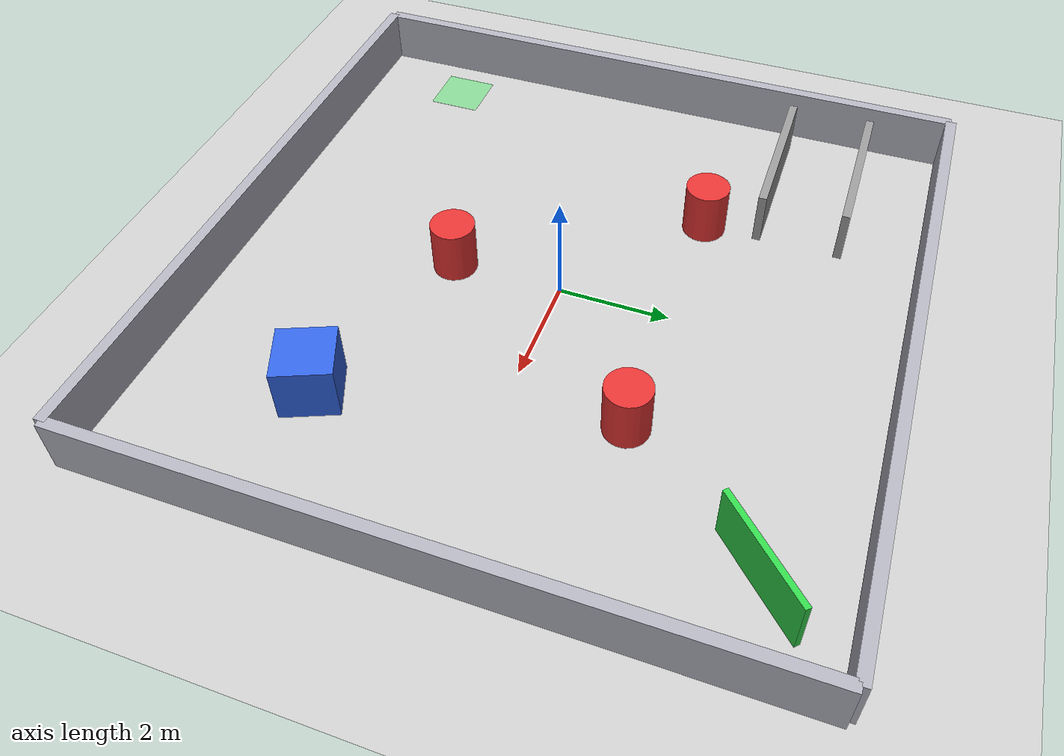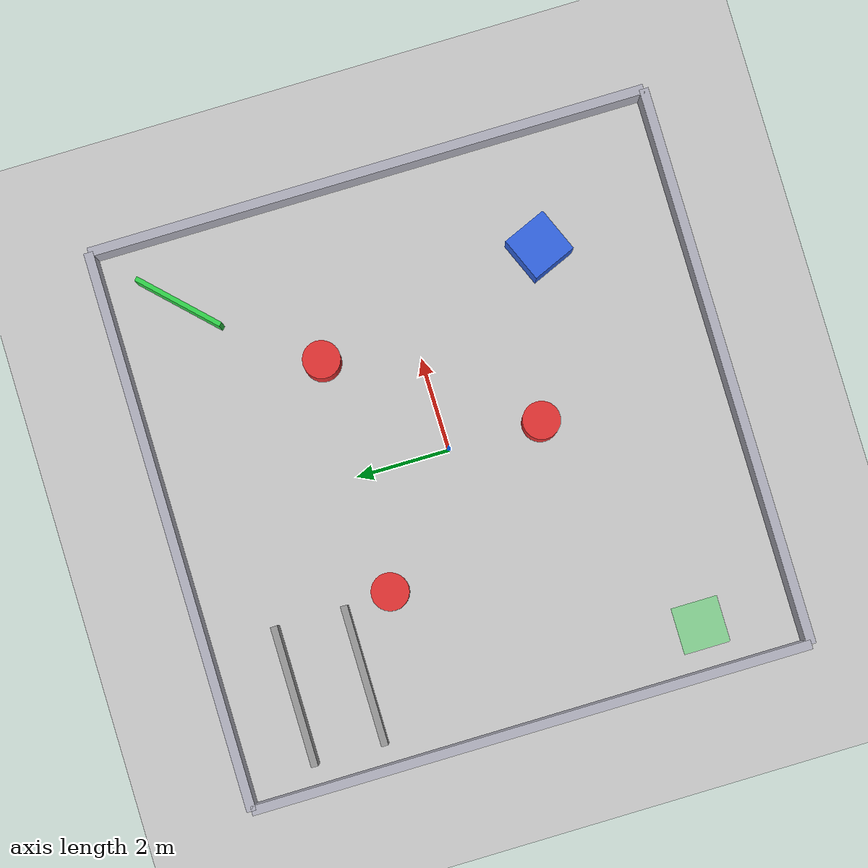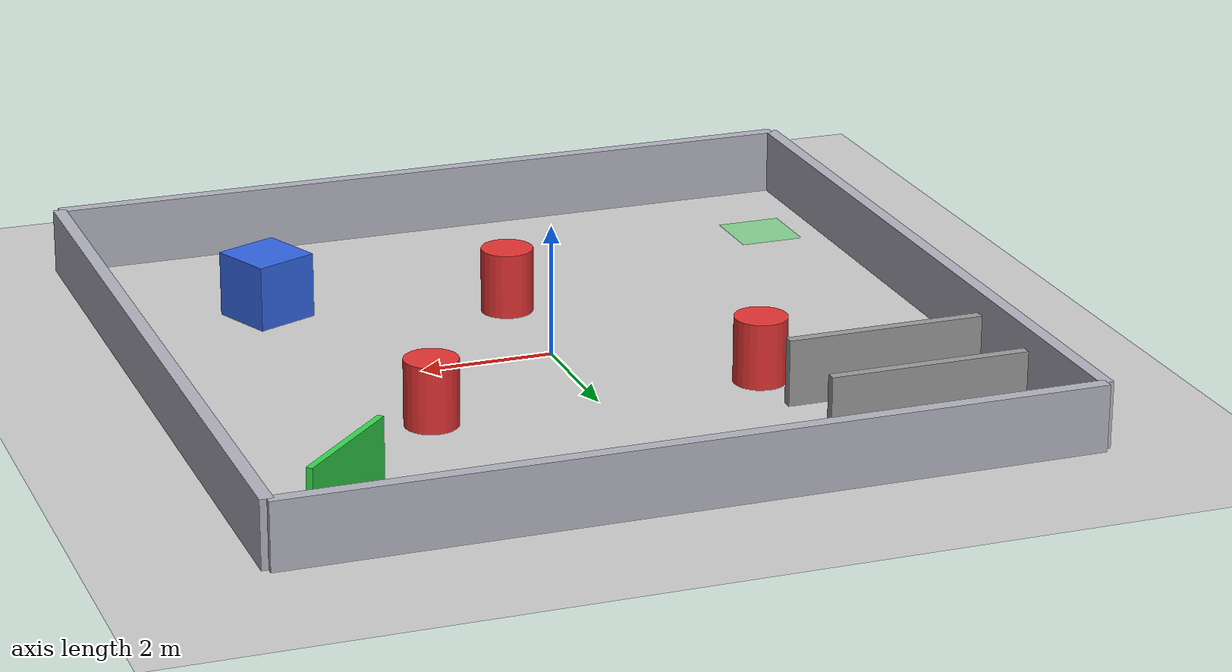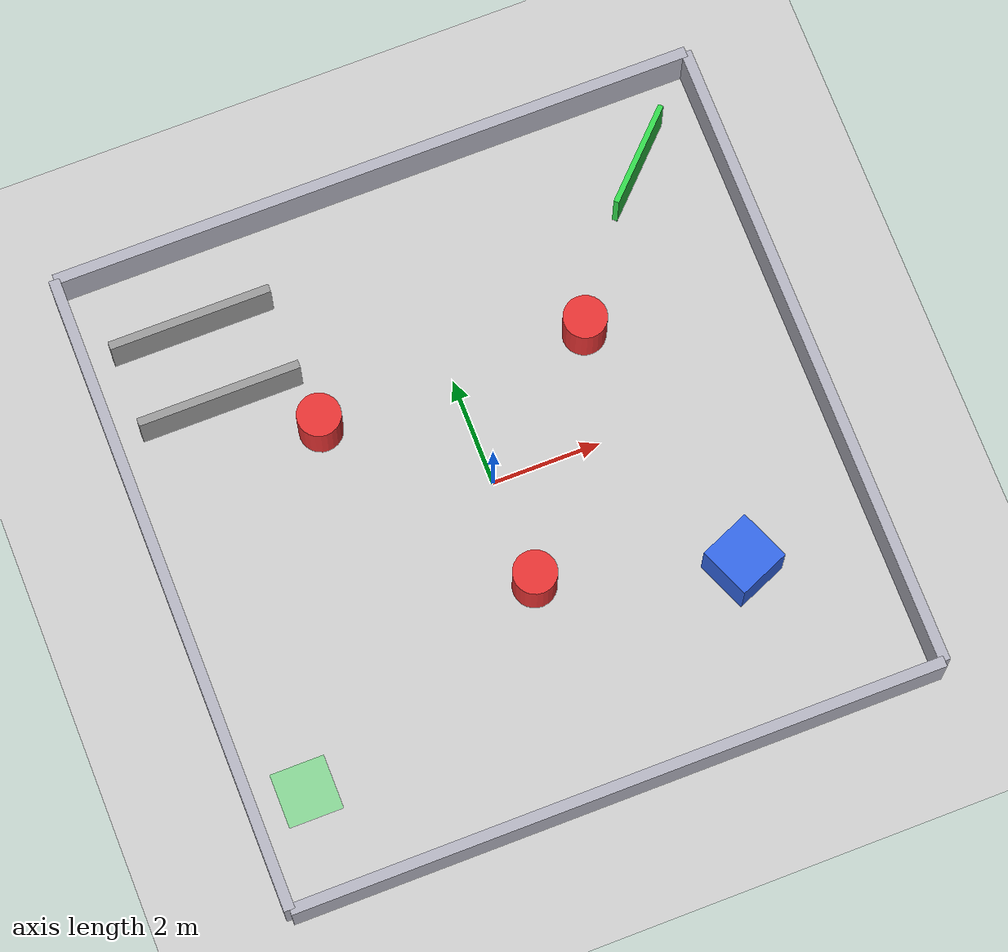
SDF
<?xml version="1.0" ?>
<sdf version="1.6">
  <world name="default">

    <!-- ==================== 物理引擎 ==================== -->
    <physics name="default_physics" default="true" type="ode">
      <max_step_size>0.001</max_step_size>
      <real_time_factor>1.0</real_time_factor>
      <real_time_update_rate>1000</real_time_update_rate>
    </physics>

    <!-- ==================== 光照 ==================== -->
    <light name="sun" type="directional">
      <cast_shadows>true</cast_shadows>
      <pose>0 0 10 0 0 0</pose>
      <diffuse>0.9 0.9 0.9 1</diffuse>
      <specular>0.2 0.2 0.2 1</specular>
      <attenuation>
        <range>1000</range>
        <constant>0.9</constant>
        <linear>0.01</linear>
        <quadratic>0.001</quadratic>
      </attenuation>
      <direction>-0.5 0.1 -0.9</direction>
    </light>

    <!-- ==================== 地面 ==================== -->
    <include>
      <uri>model://ground_plane</uri>
    </include>

    <!-- ==================== 场地围墙 (12m x 12m) ==================== -->
    <!-- 北墙 -->
    <model name="wall_north">
      <static>true</static>
      <pose>0 6 0.5 0 0 0</pose>
      <link name="link">
        <collision name="collision">
          <geometry><box><size>12 0.2 1.0</size></box></geometry>
        </collision>
        <visual name="visual">
          <geometry><box><size>12 0.2 1.0</size></box></geometry>
          <material>
            <ambient>0.6 0.6 0.65 1</ambient>
            <diffuse>0.7 0.7 0.75 1</diffuse>
          </material>
        </visual>
      </link>
    </model>

    <!-- 南墙 -->
    <model name="wall_south">
      <static>true</static>
      <pose>0 -6 0.5 0 0 0</pose>
      <link name="link">
        <collision name="collision">
          <geometry><box><size>12 0.2 1.0</size></box></geometry>
        </collision>
        <visual name="visual">
          <geometry><box><size>12 0.2 1.0</size></box></geometry>
          <material>
            <ambient>0.6 0.6 0.65 1</ambient>
            <diffuse>0.7 0.7 0.75 1</diffuse>
          </material>
        </visual>
      </link>
    </model>

    <!-- 东墙 -->
    <model name="wall_east">
      <static>true</static>
      <pose>6 0 0.5 0 0 0</pose>
      <link name="link">
        <collision name="collision">
          <geometry><box><size>0.2 12 1.0</size></box></geometry>
        </collision>
        <visual name="visual">
          <geometry><box><size>0.2 12 1.0</size></box></geometry>
          <material>
            <ambient>0.6 0.6 0.65 1</ambient>
            <diffuse>0.7 0.7 0.75 1</diffuse>
          </material>
        </visual>
      </link>
    </model>

    <!-- 西墙 -->
    <model name="wall_west">
      <static>true</static>
      <pose>-6 0 0.5 0 0 0</pose>
      <link name="link">
        <collision name="collision">
          <geometry><box><size>0.2 12 1.0</size></box></geometry>
        </collision>
        <visual name="visual">
          <geometry><box><size>0.2 12 1.0</size></box></geometry>
          <material>
            <ambient>0.6 0.6 0.65 1</ambient>
            <diffuse>0.7 0.7 0.75 1</diffuse>
          </material>
        </visual>
      </link>
    </model>

    <!-- ==================== 障碍物：圆柱阵列 ==================== -->
    <!-- 障碍物参数：半径 0.4m，高 1.0m，红色。用于激光雷达避障测试 -->

    <model name="obstacle_1">
      <static>true</static>
      <pose>2.5 2.0 0.5 0 0 0</pose>
      <link name="link">
        <collision name="collision">
          <geometry><cylinder><radius>0.4</radius><length>1.0</length></cylinder></geometry>
        </collision>
        <visual name="visual">
          <geometry><cylinder><radius>0.4</radius><length>1.0</length></cylinder></geometry>
          <material>
            <ambient>0.8 0.1 0.1 1</ambient>
            <diffuse>0.9 0.2 0.2 1</diffuse>
          </material>
        </visual>
      </link>
    </model>

    <model name="obstacle_2">
      <static>true</static>
      <pose>-2.5 2.0 0.5 0 0 0</pose>
      <link name="link">
        <collision name="collision">
          <geometry><cylinder><radius>0.4</radius><length>1.0</length></cylinder></geometry>
        </collision>
        <visual name="visual">
          <geometry><cylinder><radius>0.4</radius><length>1.0</length></cylinder></geometry>
          <material>
            <ambient>0.8 0.1 0.1 1</ambient>
            <diffuse>0.9 0.2 0.2 1</diffuse>
          </material>
        </visual>
      </link>
    </model>

    <model name="obstacle_3">
      <static>true</static>
      <pose>0 -2.0 0.5 0 0 0</pose>
      <link name="link">
        <collision name="collision">
          <geometry><cylinder><radius>0.4</radius><length>1.0</length></cylinder></geometry>
        </collision>
        <visual name="visual">
          <geometry><cylinder><radius>0.4</radius><length>1.0</length></cylinder></geometry>
          <material>
            <ambient>0.8 0.1 0.1 1</ambient>
            <diffuse>0.9 0.2 0.2 1</diffuse>
          </material>
        </visual>
      </link>
    </model>

    <!-- 方形障碍物，测试不同轮廓下的雷达回波 -->
    <model name="obstacle_box_1">
      <static>true</static>
      <pose>3.5 -3.0 0.5 0 0 0.4</pose>
      <link name="link">
        <collision name="collision">
          <geometry><box><size>1.0 1.0 1.0</size></box></geometry>
        </collision>
        <visual name="visual">
          <geometry><box><size>1.0 1.0 1.0</size></box></geometry>
          <material>
            <ambient>0.1 0.3 0.8 1</ambient>
            <diffuse>0.2 0.4 0.9 1</diffuse>
          </material>
        </visual>
      </link>
    </model>

    <!-- ==================== 走廊：测试沿墙行驶 ==================== -->
    <model name="corridor_wall_a">
      <static>true</static>
      <pose>-4.0 3.0 0.5 0 0 0</pose>
      <link name="link">
        <collision name="collision">
          <geometry><box><size>3.0 0.15 1.0</size></box></geometry>
        </collision>
        <visual name="visual">
          <geometry><box><size>3.0 0.15 1.0</size></box></geometry>
          <material>
            <ambient>0.5 0.5 0.5 1</ambient>
            <diffuse>0.6 0.6 0.6 1</diffuse>
          </material>
        </visual>
      </link>
    </model>

    <model name="corridor_wall_b">
      <static>true</static>
      <pose>-4.0 4.5 0.5 0 0 0</pose>
      <link name="link">
        <collision name="collision">
          <geometry><box><size>3.0 0.15 1.0</size></box></geometry>
        </collision>
        <visual name="visual">
          <geometry><box><size>3.0 0.15 1.0</size></box></geometry>
          <material>
            <ambient>0.5 0.5 0.5 1</ambient>
            <diffuse>0.6 0.6 0.6 1</diffuse>
          </material>
        </visual>
      </link>
    </model>

    <!-- ==================== 标定板：深度相机感知用 ==================== -->
    <!-- 绿色标定墙，深度相机通过它验证测距是否正确。
         位置说明：置于场地东北角，远离常用出生点 (-5, -4) 与 (-3.5, -3.5)，
         避免车辆生成时被卡入其中。 -->
    <model name="calibration_board">
      <static>true</static>
      <pose>4.5 4.5 0.5 0 0 0.785</pose>
      <link name="link">
        <collision name="collision">
          <geometry><box><size>2.0 0.1 1.0</size></box></geometry>
        </collision>
        <visual name="visual">
          <geometry><box><size>2.0 0.1 1.0</size></box></geometry>
          <material>
            <ambient>0.1 0.7 0.2 1</ambient>
            <diffuse>0.2 0.85 0.3 1</diffuse>
          </material>
        </visual>
      </link>
    </model>

    <!-- ==================== 出生区参考标记 ====================
         绿色半透明地面标记，指示推荐的车辆初始位置 (-5, -4)，
         该区域四周 2m 内无障碍物，便于开展直线行驶与转向测试。 -->
    <model name="spawn_marker">
      <static>true</static>
      <pose>-5.0 -4.0 0.01 0 0 0</pose>
      <link name="link">
        <visual name="visual">
          <geometry><box><size>1.0 1.0 0.01</size></box></geometry>
          <material>
            <ambient>0.2 0.8 0.3 0.5</ambient>
            <diffuse>0.3 0.9 0.4 0.5</diffuse>
          </material>
        </visual>
      </link>
    </model>

  </world>
</sdf>
